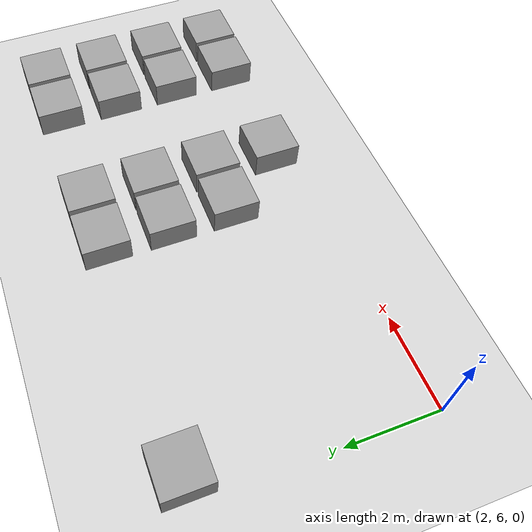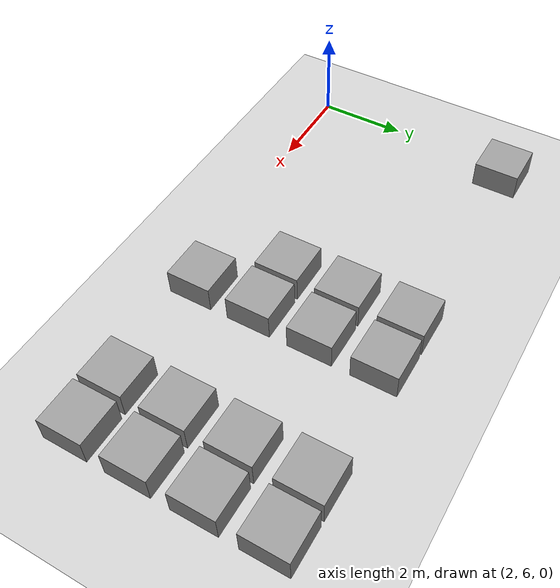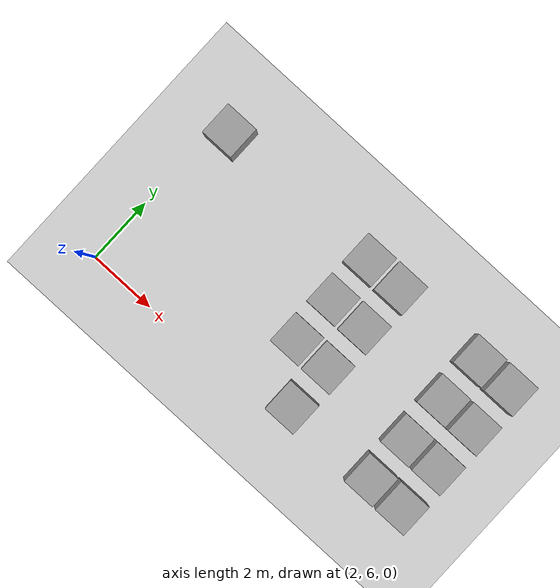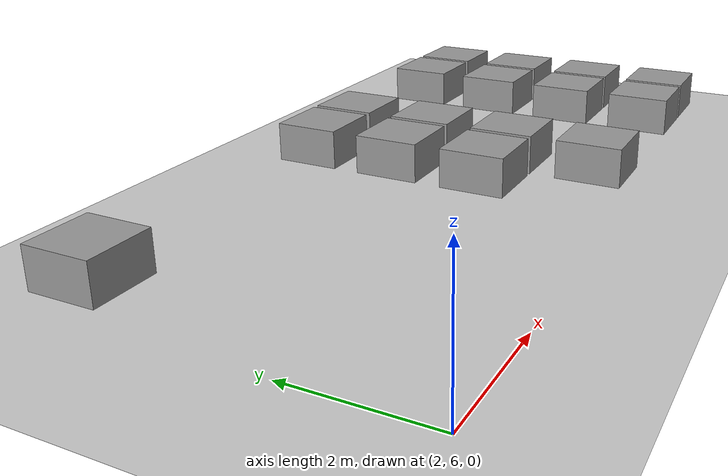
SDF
<sdf version="1.6">
 <world name="default">
  <model name="ground_plane">
   <static>1</static>
   <link name="link">
    <collision name="collision">
     <geometry><plane><normal>0 0 1</normal><size>100 100</size></plane></geometry>
     <surface>
      <contact><collide_bitmask>65535</collide_bitmask></contact>
      <friction><ode><mu>100</mu><mu2>50</mu2></ode></friction>
     </surface>
    </collision>
    <visual name="visual">
     <cast_shadows>0</cast_shadows>
     <geometry><plane><normal>0 0 1</normal><size>100 100</size></plane></geometry>
     <material>
      <script><uri>file://media/materials/scripts/gazebo.material</uri><name>Gazebo/Grey</name></script>
     </material>
    </visual>
   </link>
  </model>
  <model name="Estufa-objetos">
   <link name="link_0_clone_clone_20">
    <inertial>
     <mass>1</mass>
     <inertia>
      <ixx>0.166667</ixx>
      <ixy>0</ixy>
      <ixz>0</ixz>
      <iyy>0.166667</iyy>
      <iyz>0</iyz>
      <izz>0.166667</izz>
     </inertia>
    </inertial>
    <pose>2.5 5.9 0.5 0 -0 0</pose>
    <visual name="visual">
     <geometry><box><size>1 1 0.6</size></box></geometry>
     <material>
      <lighting>1</lighting>
      <script><uri>file://media/materials/scripts/gazebo.material</uri><name>Gazebo/Grey</name></script>
      <shader type="vertex"><normal_map>__default__</normal_map></shader>
      <ambient>0.3 0.3 0.3 1</ambient>
      <diffuse>0.7 0.7 0.7 1</diffuse>
      <specular>0.01 0.01 0.01 1</specular>
      <emissive>0 0 0 1</emissive>
     </material>
    </visual>
    <collision name="collision">
     <geometry><box><size>1 1 0.6</size></box></geometry>
     <surface>
      <friction>
       <ode><mu>1</mu><mu2>1</mu2><fdir1>0 0 0</fdir1><slip1>0</slip1><slip2>0</slip2></ode>
       <torsional>
        <coefficient>1</coefficient>
        <patch_radius>0</patch_radius>
        <surface_radius>0</surface_radius>
        <use_patch_radius>1</use_patch_radius>
        <ode><slip>0</slip></ode>
       </torsional>
      </friction>
      <bounce><restitution_coefficient>0</restitution_coefficient><threshold>1e+06</threshold></bounce>
      <contact>
       <collide_without_contact>0</collide_without_contact>
       <collide_without_contact_bitmask>1</collide_without_contact_bitmask>
       <collide_bitmask>1</collide_bitmask>
       <ode>
        <soft_cfm>0</soft_cfm>
        <soft_erp>0.2</soft_erp>
        <kp>1e+13</kp>
        <kd>1</kd>
        <max_vel>0.01</max_vel>
        <min_depth>0</min_depth>
       </ode>
       <bullet>
        <split_impulse>1</split_impulse>
        <split_impulse_penetration_threshold>-0.01</split_impulse_penetration_threshold>
        <soft_cfm>0</soft_cfm>
        <soft_erp>0.2</soft_erp>
        <kp>1e+13</kp>
        <kd>1</kd>
       </bullet>
      </contact>
     </surface>
    </collision>
   </link>
   <static>1</static>
   <pose>0.033468 4.9867 0 0 -0 0</pose>
  </model>
  <model name="Estufa-objetos_0">
   <link name="link_0_clone_clone_10">
    <inertial>
     <mass>1</mass>
     <inertia>
      <ixx>0.166667</ixx>
      <ixy>0</ixy>
      <ixz>0</ixz>
      <iyy>0.166667</iyy>
      <iyz>0</iyz>
      <izz>0.166667</izz>
     </inertia>
    </inertial>
    <pose>-1.4 1.7 0.5 0 -0 0</pose>
    <visual name="visual">
     <geometry><box><size>1 1 0.6</size></box></geometry>
     <material>
      <lighting>1</lighting>
      <script><uri>file://media/materials/scripts/gazebo.material</uri><name>Gazebo/Grey</name></script>
      <shader type="vertex"><normal_map>__default__</normal_map></shader>
      <ambient>0.3 0.3 0.3 1</ambient>
      <diffuse>0.7 0.7 0.7 1</diffuse>
      <specular>0.01 0.01 0.01 1</specular>
      <emissive>0 0 0 1</emissive>
     </material>
    </visual>
    <collision name="collision">
     <geometry><box><size>1 1 0.6</size></box></geometry>
     <surface>
      <friction>
       <ode><mu>1</mu><mu2>1</mu2><fdir1>0 0 0</fdir1><slip1>0</slip1><slip2>0</slip2></ode>
       <torsional>
        <coefficient>1</coefficient>
        <patch_radius>0</patch_radius>
        <surface_radius>0</surface_radius>
        <use_patch_radius>1</use_patch_radius>
        <ode><slip>0</slip></ode>
       </torsional>
      </friction>
      <bounce><restitution_coefficient>0</restitution_coefficient><threshold>1e+06</threshold></bounce>
      <contact>
       <collide_without_contact>0</collide_without_contact>
       <collide_without_contact_bitmask>1</collide_without_contact_bitmask>
       <collide_bitmask>1</collide_bitmask>
       <ode>
        <soft_cfm>0</soft_cfm>
        <soft_erp>0.2</soft_erp>
        <kp>1e+13</kp>
        <kd>1</kd>
        <max_vel>0.01</max_vel>
        <min_depth>0</min_depth>
       </ode>
       <bullet>
        <split_impulse>1</split_impulse>
        <split_impulse_penetration_threshold>-0.01</split_impulse_penetration_threshold>
        <soft_cfm>0</soft_cfm>
        <soft_erp>0.2</soft_erp>
        <kp>1e+13</kp>
        <kd>1</kd>
       </bullet>
      </contact>
     </surface>
    </collision>
   </link>
   <link name="link_0_clone_clone_12">
    <inertial>
     <mass>1</mass>
     <inertia>
      <ixx>0.166667</ixx>
      <ixy>0</ixy>
      <ixz>0</ixz>
      <iyy>0.166667</iyy>
      <iyz>0</iyz>
      <izz>0.166667</izz>
     </inertia>
    </inertial>
    <pose>2.5 3.1 0.5 0 -0 0</pose>
    <visual name="visual">
     <geometry><box><size>1 1 0.6</size></box></geometry>
     <material>
      <lighting>1</lighting>
      <script><uri>file://media/materials/scripts/gazebo.material</uri><name>Gazebo/Grey</name></script>
      <shader type="vertex"><normal_map>__default__</normal_map></shader>
      <ambient>0.3 0.3 0.3 1</ambient>
      <diffuse>0.7 0.7 0.7 1</diffuse>
      <specular>0.01 0.01 0.01 1</specular>
      <emissive>0 0 0 1</emissive>
     </material>
    </visual>
    <collision name="collision">
     <geometry><box><size>1 1 0.6</size></box></geometry>
     <surface>
      <friction>
       <ode><mu>1</mu><mu2>1</mu2><fdir1>0 0 0</fdir1><slip1>0</slip1><slip2>0</slip2></ode>
       <torsional>
        <coefficient>1</coefficient>
        <patch_radius>0</patch_radius>
        <surface_radius>0</surface_radius>
        <use_patch_radius>1</use_patch_radius>
        <ode><slip>0</slip></ode>
       </torsional>
      </friction>
      <bounce><restitution_coefficient>0</restitution_coefficient><threshold>1e+06</threshold></bounce>
      <contact>
       <collide_without_contact>0</collide_without_contact>
       <collide_without_contact_bitmask>1</collide_without_contact_bitmask>
       <collide_bitmask>1</collide_bitmask>
       <ode>
        <soft_cfm>0</soft_cfm>
        <soft_erp>0.2</soft_erp>
        <kp>1e+13</kp>
        <kd>1</kd>
        <max_vel>0.01</max_vel>
        <min_depth>0</min_depth>
       </ode>
       <bullet>
        <split_impulse>1</split_impulse>
        <split_impulse_penetration_threshold>-0.01</split_impulse_penetration_threshold>
        <soft_cfm>0</soft_cfm>
        <soft_erp>0.2</soft_erp>
        <kp>1e+13</kp>
        <kd>1</kd>
       </bullet>
      </contact>
     </surface>
    </collision>
   </link>
   <link name="link_0_clone_clone_13">
    <inertial>
     <mass>1</mass>
     <inertia>
      <ixx>0.166667</ixx>
      <ixy>0</ixy>
      <ixz>0</ixz>
      <iyy>0.166667</iyy>
      <iyz>0</iyz>
      <izz>0.166667</izz>
     </inertia>
    </inertial>
    <pose>1.4 3.1 0.5 0 -0 0</pose>
    <visual name="visual">
     <geometry><box><size>1 1 0.6</size></box></geometry>
     <material>
      <lighting>1</lighting>
      <script><uri>file://media/materials/scripts/gazebo.material</uri><name>Gazebo/Grey</name></script>
      <shader type="vertex"><normal_map>__default__</normal_map></shader>
      <ambient>0.3 0.3 0.3 1</ambient>
      <diffuse>0.7 0.7 0.7 1</diffuse>
      <specular>0.01 0.01 0.01 1</specular>
      <emissive>0 0 0 1</emissive>
     </material>
    </visual>
    <collision name="collision">
     <geometry><box><size>1 1 0.6</size></box></geometry>
     <surface>
      <friction>
       <ode><mu>1</mu><mu2>1</mu2><fdir1>0 0 0</fdir1><slip1>0</slip1><slip2>0</slip2></ode>
       <torsional>
        <coefficient>1</coefficient>
        <patch_radius>0</patch_radius>
        <surface_radius>0</surface_radius>
        <use_patch_radius>1</use_patch_radius>
        <ode><slip>0</slip></ode>
       </torsional>
      </friction>
      <bounce><restitution_coefficient>0</restitution_coefficient><threshold>1e+06</threshold></bounce>
      <contact>
       <collide_without_contact>0</collide_without_contact>
       <collide_without_contact_bitmask>1</collide_without_contact_bitmask>
       <collide_bitmask>1</collide_bitmask>
       <ode>
        <soft_cfm>0</soft_cfm>
        <soft_erp>0.2</soft_erp>
        <kp>1e+13</kp>
        <kd>1</kd>
        <max_vel>0.01</max_vel>
        <min_depth>0</min_depth>
       </ode>
       <bullet>
        <split_impulse>1</split_impulse>
        <split_impulse_penetration_threshold>-0.01</split_impulse_penetration_threshold>
        <soft_cfm>0</soft_cfm>
        <soft_erp>0.2</soft_erp>
        <kp>1e+13</kp>
        <kd>1</kd>
       </bullet>
      </contact>
     </surface>
    </collision>
   </link>
   <link name="link_0_clone_clone_14">
    <inertial>
     <mass>1</mass>
     <inertia>
      <ixx>0.166667</ixx>
      <ixy>0</ixy>
      <ixz>0</ixz>
      <iyy>0.166667</iyy>
      <iyz>0</iyz>
      <izz>0.166667</izz>
     </inertia>
    </inertial>
    <pose>-1.4 3.1 0.5 0 -0 0</pose>
    <visual name="visual">
     <geometry><box><size>1 1 0.6</size></box></geometry>
     <material>
      <lighting>1</lighting>
      <script><uri>file://media/materials/scripts/gazebo.material</uri><name>Gazebo/Grey</name></script>
      <shader type="vertex"><normal_map>__default__</normal_map></shader>
      <ambient>0.3 0.3 0.3 1</ambient>
      <diffuse>0.7 0.7 0.7 1</diffuse>
      <specular>0.01 0.01 0.01 1</specular>
      <emissive>0 0 0 1</emissive>
     </material>
    </visual>
    <collision name="collision">
     <geometry><box><size>1 1 0.6</size></box></geometry>
     <surface>
      <friction>
       <ode><mu>1</mu><mu2>1</mu2><fdir1>0 0 0</fdir1><slip1>0</slip1><slip2>0</slip2></ode>
       <torsional>
        <coefficient>1</coefficient>
        <patch_radius>0</patch_radius>
        <surface_radius>0</surface_radius>
        <use_patch_radius>1</use_patch_radius>
        <ode><slip>0</slip></ode>
       </torsional>
      </friction>
      <bounce><restitution_coefficient>0</restitution_coefficient><threshold>1e+06</threshold></bounce>
      <contact>
       <collide_without_contact>0</collide_without_contact>
       <collide_without_contact_bitmask>1</collide_without_contact_bitmask>
       <collide_bitmask>1</collide_bitmask>
       <ode>
        <soft_cfm>0</soft_cfm>
        <soft_erp>0.2</soft_erp>
        <kp>1e+13</kp>
        <kd>1</kd>
        <max_vel>0.01</max_vel>
        <min_depth>0</min_depth>
       </ode>
       <bullet>
        <split_impulse>1</split_impulse>
        <split_impulse_penetration_threshold>-0.01</split_impulse_penetration_threshold>
        <soft_cfm>0</soft_cfm>
        <soft_erp>0.2</soft_erp>
        <kp>1e+13</kp>
        <kd>1</kd>
       </bullet>
      </contact>
     </surface>
    </collision>
   </link>
   <link name="link_0_clone_clone_15">
    <inertial>
     <mass>1</mass>
     <inertia>
      <ixx>0.166667</ixx>
      <ixy>0</ixy>
      <ixz>0</ixz>
      <iyy>0.166667</iyy>
      <iyz>0</iyz>
      <izz>0.166667</izz>
     </inertia>
    </inertial>
    <pose>-2.5 3.1 0.5 0 -0 0</pose>
    <visual name="visual">
     <geometry><box><size>1 1 0.6</size></box></geometry>
     <material>
      <lighting>1</lighting>
      <script><uri>file://media/materials/scripts/gazebo.material</uri><name>Gazebo/Grey</name></script>
      <shader type="vertex"><normal_map>__default__</normal_map></shader>
      <ambient>0.3 0.3 0.3 1</ambient>
      <diffuse>0.7 0.7 0.7 1</diffuse>
      <specular>0.01 0.01 0.01 1</specular>
      <emissive>0 0 0 1</emissive>
     </material>
    </visual>
    <collision name="collision">
     <geometry><box><size>1 1 0.6</size></box></geometry>
     <surface>
      <friction>
       <ode><mu>1</mu><mu2>1</mu2><fdir1>0 0 0</fdir1><slip1>0</slip1><slip2>0</slip2></ode>
       <torsional>
        <coefficient>1</coefficient>
        <patch_radius>0</patch_radius>
        <surface_radius>0</surface_radius>
        <use_patch_radius>1</use_patch_radius>
        <ode><slip>0</slip></ode>
       </torsional>
      </friction>
      <bounce><restitution_coefficient>0</restitution_coefficient><threshold>1e+06</threshold></bounce>
      <contact>
       <collide_without_contact>0</collide_without_contact>
       <collide_without_contact_bitmask>1</collide_without_contact_bitmask>
       <collide_bitmask>1</collide_bitmask>
       <ode>
        <soft_cfm>0</soft_cfm>
        <soft_erp>0.2</soft_erp>
        <kp>1e+13</kp>
        <kd>1</kd>
        <max_vel>0.01</max_vel>
        <min_depth>0</min_depth>
       </ode>
       <bullet>
        <split_impulse>1</split_impulse>
        <split_impulse_penetration_threshold>-0.01</split_impulse_penetration_threshold>
        <soft_cfm>0</soft_cfm>
        <soft_erp>0.2</soft_erp>
        <kp>1e+13</kp>
        <kd>1</kd>
       </bullet>
      </contact>
     </surface>
    </collision>
   </link>
   <link name="link_0_clone_clone_16">
    <inertial>
     <mass>1</mass>
     <inertia>
      <ixx>0.166667</ixx>
      <ixy>0</ixy>
      <ixz>0</ixz>
      <iyy>0.166667</iyy>
      <iyz>0</iyz>
      <izz>0.166667</izz>
     </inertia>
    </inertial>
    <pose>2.5 4.5 0.5 0 -0 0</pose>
    <visual name="visual">
     <geometry><box><size>1 1 0.6</size></box></geometry>
     <material>
      <lighting>1</lighting>
      <script><uri>file://media/materials/scripts/gazebo.material</uri><name>Gazebo/Grey</name></script>
      <shader type="vertex"><normal_map>__default__</normal_map></shader>
      <ambient>0.3 0.3 0.3 1</ambient>
      <diffuse>0.7 0.7 0.7 1</diffuse>
      <specular>0.01 0.01 0.01 1</specular>
      <emissive>0 0 0 1</emissive>
     </material>
    </visual>
    <collision name="collision">
     <geometry><box><size>1 1 0.6</size></box></geometry>
     <surface>
      <friction>
       <ode><mu>1</mu><mu2>1</mu2><fdir1>0 0 0</fdir1><slip1>0</slip1><slip2>0</slip2></ode>
       <torsional>
        <coefficient>1</coefficient>
        <patch_radius>0</patch_radius>
        <surface_radius>0</surface_radius>
        <use_patch_radius>1</use_patch_radius>
        <ode><slip>0</slip></ode>
       </torsional>
      </friction>
      <bounce><restitution_coefficient>0</restitution_coefficient><threshold>1e+06</threshold></bounce>
      <contact>
       <collide_without_contact>0</collide_without_contact>
       <collide_without_contact_bitmask>1</collide_without_contact_bitmask>
       <collide_bitmask>1</collide_bitmask>
       <ode>
        <soft_cfm>0</soft_cfm>
        <soft_erp>0.2</soft_erp>
        <kp>1e+13</kp>
        <kd>1</kd>
        <max_vel>0.01</max_vel>
        <min_depth>0</min_depth>
       </ode>
       <bullet>
        <split_impulse>1</split_impulse>
        <split_impulse_penetration_threshold>-0.01</split_impulse_penetration_threshold>
        <soft_cfm>0</soft_cfm>
        <soft_erp>0.2</soft_erp>
        <kp>1e+13</kp>
        <kd>1</kd>
       </bullet>
      </contact>
     </surface>
    </collision>
   </link>
   <link name="link_0_clone_clone_17">
    <inertial>
     <mass>1</mass>
     <inertia>
      <ixx>0.166667</ixx>
      <ixy>0</ixy>
      <ixz>0</ixz>
      <iyy>0.166667</iyy>
      <iyz>0</iyz>
      <izz>0.166667</izz>
     </inertia>
    </inertial>
    <pose>1.4 4.5 0.5 0 -0 0</pose>
    <visual name="visual">
     <geometry><box><size>1 1 0.6</size></box></geometry>
     <material>
      <lighting>1</lighting>
      <script><uri>file://media/materials/scripts/gazebo.material</uri><name>Gazebo/Grey</name></script>
      <shader type="vertex"><normal_map>__default__</normal_map></shader>
      <ambient>0.3 0.3 0.3 1</ambient>
      <diffuse>0.7 0.7 0.7 1</diffuse>
      <specular>0.01 0.01 0.01 1</specular>
      <emissive>0 0 0 1</emissive>
     </material>
    </visual>
    <collision name="collision">
     <geometry><box><size>1 1 0.6</size></box></geometry>
     <surface>
      <friction>
       <ode><mu>1</mu><mu2>1</mu2><fdir1>0 0 0</fdir1><slip1>0</slip1><slip2>0</slip2></ode>
       <torsional>
        <coefficient>1</coefficient>
        <patch_radius>0</patch_radius>
        <surface_radius>0</surface_radius>
        <use_patch_radius>1</use_patch_radius>
        <ode><slip>0</slip></ode>
       </torsional>
      </friction>
      <bounce><restitution_coefficient>0</restitution_coefficient><threshold>1e+06</threshold></bounce>
      <contact>
       <collide_without_contact>0</collide_without_contact>
       <collide_without_contact_bitmask>1</collide_without_contact_bitmask>
       <collide_bitmask>1</collide_bitmask>
       <ode>
        <soft_cfm>0</soft_cfm>
        <soft_erp>0.2</soft_erp>
        <kp>1e+13</kp>
        <kd>1</kd>
        <max_vel>0.01</max_vel>
        <min_depth>0</min_depth>
       </ode>
       <bullet>
        <split_impulse>1</split_impulse>
        <split_impulse_penetration_threshold>-0.01</split_impulse_penetration_threshold>
        <soft_cfm>0</soft_cfm>
        <soft_erp>0.2</soft_erp>
        <kp>1e+13</kp>
        <kd>1</kd>
       </bullet>
      </contact>
     </surface>
    </collision>
   </link>
   <link name="link_0_clone_clone_18">
    <inertial>
     <mass>1</mass>
     <inertia>
      <ixx>0.166667</ixx>
      <ixy>0</ixy>
      <ixz>0</ixz>
      <iyy>0.166667</iyy>
      <iyz>0</iyz>
      <izz>0.166667</izz>
     </inertia>
    </inertial>
    <pose>-1.4 4.5 0.5 0 -0 0</pose>
    <visual name="visual">
     <geometry><box><size>1 1 0.6</size></box></geometry>
     <material>
      <lighting>1</lighting>
      <script><uri>file://media/materials/scripts/gazebo.material</uri><name>Gazebo/Grey</name></script>
      <shader type="vertex"><normal_map>__default__</normal_map></shader>
      <ambient>0.3 0.3 0.3 1</ambient>
      <diffuse>0.7 0.7 0.7 1</diffuse>
      <specular>0.01 0.01 0.01 1</specular>
      <emissive>0 0 0 1</emissive>
     </material>
    </visual>
    <collision name="collision">
     <geometry><box><size>1 1 0.6</size></box></geometry>
     <surface>
      <friction>
       <ode><mu>1</mu><mu2>1</mu2><fdir1>0 0 0</fdir1><slip1>0</slip1><slip2>0</slip2></ode>
       <torsional>
        <coefficient>1</coefficient>
        <patch_radius>0</patch_radius>
        <surface_radius>0</surface_radius>
        <use_patch_radius>1</use_patch_radius>
        <ode><slip>0</slip></ode>
       </torsional>
      </friction>
      <bounce><restitution_coefficient>0</restitution_coefficient><threshold>1e+06</threshold></bounce>
      <contact>
       <collide_without_contact>0</collide_without_contact>
       <collide_without_contact_bitmask>1</collide_without_contact_bitmask>
       <collide_bitmask>1</collide_bitmask>
       <ode>
        <soft_cfm>0</soft_cfm>
        <soft_erp>0.2</soft_erp>
        <kp>1e+13</kp>
        <kd>1</kd>
        <max_vel>0.01</max_vel>
        <min_depth>0</min_depth>
       </ode>
       <bullet>
        <split_impulse>1</split_impulse>
        <split_impulse_penetration_threshold>-0.01</split_impulse_penetration_threshold>
        <soft_cfm>0</soft_cfm>
        <soft_erp>0.2</soft_erp>
        <kp>1e+13</kp>
        <kd>1</kd>
       </bullet>
      </contact>
     </surface>
    </collision>
   </link>
   <link name="link_0_clone_clone_19">
    <inertial>
     <mass>1</mass>
     <inertia>
      <ixx>0.166667</ixx>
      <ixy>0</ixy>
      <ixz>0</ixz>
      <iyy>0.166667</iyy>
      <iyz>0</iyz>
      <izz>0.166667</izz>
     </inertia>
    </inertial>
    <pose>-2.5 4.5 0.5 0 -0 0</pose>
    <visual name="visual">
     <geometry><box><size>1 1 0.6</size></box></geometry>
     <material>
      <lighting>1</lighting>
      <script><uri>file://media/materials/scripts/gazebo.material</uri><name>Gazebo/Grey</name></script>
      <shader type="vertex"><normal_map>__default__</normal_map></shader>
      <ambient>0.3 0.3 0.3 1</ambient>
      <diffuse>0.7 0.7 0.7 1</diffuse>
      <specular>0.01 0.01 0.01 1</specular>
      <emissive>0 0 0 1</emissive>
     </material>
    </visual>
    <collision name="collision">
     <geometry><box><size>1 1 0.6</size></box></geometry>
     <surface>
      <friction>
       <ode><mu>1</mu><mu2>1</mu2><fdir1>0 0 0</fdir1><slip1>0</slip1><slip2>0</slip2></ode>
       <torsional>
        <coefficient>1</coefficient>
        <patch_radius>0</patch_radius>
        <surface_radius>0</surface_radius>
        <use_patch_radius>1</use_patch_radius>
        <ode><slip>0</slip></ode>
       </torsional>
      </friction>
      <bounce><restitution_coefficient>0</restitution_coefficient><threshold>1e+06</threshold></bounce>
      <contact>
       <collide_without_contact>0</collide_without_contact>
       <collide_without_contact_bitmask>1</collide_without_contact_bitmask>
       <collide_bitmask>1</collide_bitmask>
       <ode>
        <soft_cfm>0</soft_cfm>
        <soft_erp>0.2</soft_erp>
        <kp>1e+13</kp>
        <kd>1</kd>
        <max_vel>0.01</max_vel>
        <min_depth>0</min_depth>
       </ode>
       <bullet>
        <split_impulse>1</split_impulse>
        <split_impulse_penetration_threshold>-0.01</split_impulse_penetration_threshold>
        <soft_cfm>0</soft_cfm>
        <soft_erp>0.2</soft_erp>
        <kp>1e+13</kp>
        <kd>1</kd>
       </bullet>
      </contact>
     </surface>
    </collision>
   </link>
   <link name="link_0_clone_clone_20">
    <inertial>
     <mass>1</mass>
     <inertia>
      <ixx>0.166667</ixx>
      <ixy>0</ixy>
      <ixz>0</ixz>
      <iyy>0.166667</iyy>
      <iyz>0</iyz>
      <izz>0.166667</izz>
     </inertia>
    </inertial>
    <pose>2.5 5.9 0.5 0 -0 0</pose>
    <visual name="visual">
     <geometry><box><size>1 1 0.6</size></box></geometry>
     <material>
      <lighting>1</lighting>
      <script><uri>file://media/materials/scripts/gazebo.material</uri><name>Gazebo/Grey</name></script>
      <shader type="vertex"><normal_map>__default__</normal_map></shader>
      <ambient>0.3 0.3 0.3 1</ambient>
      <diffuse>0.7 0.7 0.7 1</diffuse>
      <specular>0.01 0.01 0.01 1</specular>
      <emissive>0 0 0 1</emissive>
     </material>
    </visual>
    <collision name="collision">
     <geometry><box><size>1 1 0.6</size></box></geometry>
     <surface>
      <friction>
       <ode><mu>1</mu><mu2>1</mu2><fdir1>0 0 0</fdir1><slip1>0</slip1><slip2>0</slip2></ode>
       <torsional>
        <coefficient>1</coefficient>
        <patch_radius>0</patch_radius>
        <surface_radius>0</surface_radius>
        <use_patch_radius>1</use_patch_radius>
        <ode><slip>0</slip></ode>
       </torsional>
      </friction>
      <bounce><restitution_coefficient>0</restitution_coefficient><threshold>1e+06</threshold></bounce>
      <contact>
       <collide_without_contact>0</collide_without_contact>
       <collide_without_contact_bitmask>1</collide_without_contact_bitmask>
       <collide_bitmask>1</collide_bitmask>
       <ode>
        <soft_cfm>0</soft_cfm>
        <soft_erp>0.2</soft_erp>
        <kp>1e+13</kp>
        <kd>1</kd>
        <max_vel>0.01</max_vel>
        <min_depth>0</min_depth>
       </ode>
       <bullet>
        <split_impulse>1</split_impulse>
        <split_impulse_penetration_threshold>-0.01</split_impulse_penetration_threshold>
        <soft_cfm>0</soft_cfm>
        <soft_erp>0.2</soft_erp>
        <kp>1e+13</kp>
        <kd>1</kd>
       </bullet>
      </contact>
     </surface>
    </collision>
   </link>
   <link name="link_0_clone_clone_21">
    <inertial>
     <mass>1</mass>
     <inertia>
      <ixx>0.166667</ixx>
      <ixy>0</ixy>
      <ixz>0</ixz>
      <iyy>0.166667</iyy>
      <iyz>0</iyz>
      <izz>0.166667</izz>
     </inertia>
    </inertial>
    <pose>1.4 5.9 0.5 0 -0 0</pose>
    <visual name="visual">
     <geometry><box><size>1 1 0.6</size></box></geometry>
     <material>
      <lighting>1</lighting>
      <script><uri>file://media/materials/scripts/gazebo.material</uri><name>Gazebo/Grey</name></script>
      <shader type="vertex"><normal_map>__default__</normal_map></shader>
      <ambient>0.3 0.3 0.3 1</ambient>
      <diffuse>0.7 0.7 0.7 1</diffuse>
      <specular>0.01 0.01 0.01 1</specular>
      <emissive>0 0 0 1</emissive>
     </material>
    </visual>
    <collision name="collision">
     <geometry><box><size>1 1 0.6</size></box></geometry>
     <surface>
      <friction>
       <ode><mu>1</mu><mu2>1</mu2><fdir1>0 0 0</fdir1><slip1>0</slip1><slip2>0</slip2></ode>
       <torsional>
        <coefficient>1</coefficient>
        <patch_radius>0</patch_radius>
        <surface_radius>0</surface_radius>
        <use_patch_radius>1</use_patch_radius>
        <ode><slip>0</slip></ode>
       </torsional>
      </friction>
      <bounce><restitution_coefficient>0</restitution_coefficient><threshold>1e+06</threshold></bounce>
      <contact>
       <collide_without_contact>0</collide_without_contact>
       <collide_without_contact_bitmask>1</collide_without_contact_bitmask>
       <collide_bitmask>1</collide_bitmask>
       <ode>
        <soft_cfm>0</soft_cfm>
        <soft_erp>0.2</soft_erp>
        <kp>1e+13</kp>
        <kd>1</kd>
        <max_vel>0.01</max_vel>
        <min_depth>0</min_depth>
       </ode>
       <bullet>
        <split_impulse>1</split_impulse>
        <split_impulse_penetration_threshold>-0.01</split_impulse_penetration_threshold>
        <soft_cfm>0</soft_cfm>
        <soft_erp>0.2</soft_erp>
        <kp>1e+13</kp>
        <kd>1</kd>
       </bullet>
      </contact>
     </surface>
    </collision>
   </link>
   <link name="link_0_clone_clone_22">
    <inertial>
     <mass>1</mass>
     <inertia>
      <ixx>0.166667</ixx>
      <ixy>0</ixy>
      <ixz>0</ixz>
      <iyy>0.166667</iyy>
      <iyz>0</iyz>
      <izz>0.166667</izz>
     </inertia>
    </inertial>
    <pose>-1.4 5.9 0.5 0 -0 0</pose>
    <visual name="visual">
     <geometry><box><size>1 1 0.6</size></box></geometry>
     <material>
      <lighting>1</lighting>
      <script><uri>file://media/materials/scripts/gazebo.material</uri><name>Gazebo/Grey</name></script>
      <shader type="vertex"><normal_map>__default__</normal_map></shader>
      <ambient>0.3 0.3 0.3 1</ambient>
      <diffuse>0.7 0.7 0.7 1</diffuse>
      <specular>0.01 0.01 0.01 1</specular>
      <emissive>0 0 0 1</emissive>
     </material>
    </visual>
    <collision name="collision">
     <geometry><box><size>1 1 0.6</size></box></geometry>
     <surface>
      <friction>
       <ode><mu>1</mu><mu2>1</mu2><fdir1>0 0 0</fdir1><slip1>0</slip1><slip2>0</slip2></ode>
       <torsional>
        <coefficient>1</coefficient>
        <patch_radius>0</patch_radius>
        <surface_radius>0</surface_radius>
        <use_patch_radius>1</use_patch_radius>
        <ode><slip>0</slip></ode>
       </torsional>
      </friction>
      <bounce><restitution_coefficient>0</restitution_coefficient><threshold>1e+06</threshold></bounce>
      <contact>
       <collide_without_contact>0</collide_without_contact>
       <collide_without_contact_bitmask>1</collide_without_contact_bitmask>
       <collide_bitmask>1</collide_bitmask>
       <ode>
        <soft_cfm>0</soft_cfm>
        <soft_erp>0.2</soft_erp>
        <kp>1e+13</kp>
        <kd>1</kd>
        <max_vel>0.01</max_vel>
        <min_depth>0</min_depth>
       </ode>
       <bullet>
        <split_impulse>1</split_impulse>
        <split_impulse_penetration_threshold>-0.01</split_impulse_penetration_threshold>
        <soft_cfm>0</soft_cfm>
        <soft_erp>0.2</soft_erp>
        <kp>1e+13</kp>
        <kd>1</kd>
       </bullet>
      </contact>
     </surface>
    </collision>
   </link>
   <link name="link_0_clone_clone_23">
    <inertial>
     <mass>1</mass>
     <inertia>
      <ixx>0.166667</ixx>
      <ixy>0</ixy>
      <ixz>0</ixz>
      <iyy>0.166667</iyy>
      <iyz>0</iyz>
      <izz>0.166667</izz>
     </inertia>
    </inertial>
    <pose>-2.5 5.9 0.5 0 -0 0</pose>
    <visual name="visual">
     <geometry><box><size>1 1 0.6</size></box></geometry>
     <material>
      <lighting>1</lighting>
      <script><uri>file://media/materials/scripts/gazebo.material</uri><name>Gazebo/Grey</name></script>
      <shader type="vertex"><normal_map>__default__</normal_map></shader>
      <ambient>0.3 0.3 0.3 1</ambient>
      <diffuse>0.7 0.7 0.7 1</diffuse>
      <specular>0.01 0.01 0.01 1</specular>
      <emissive>0 0 0 1</emissive>
     </material>
    </visual>
    <collision name="collision">
     <geometry><box><size>1 1 0.6</size></box></geometry>
     <surface>
      <friction>
       <ode><mu>1</mu><mu2>1</mu2><fdir1>0 0 0</fdir1><slip1>0</slip1><slip2>0</slip2></ode>
       <torsional>
        <coefficient>1</coefficient>
        <patch_radius>0</patch_radius>
        <surface_radius>0</surface_radius>
        <use_patch_radius>1</use_patch_radius>
        <ode><slip>0</slip></ode>
       </torsional>
      </friction>
      <bounce><restitution_coefficient>0</restitution_coefficient><threshold>1e+06</threshold></bounce>
      <contact>
       <collide_without_contact>0</collide_without_contact>
       <collide_without_contact_bitmask>1</collide_without_contact_bitmask>
       <collide_bitmask>1</collide_bitmask>
       <ode>
        <soft_cfm>0</soft_cfm>
        <soft_erp>0.2</soft_erp>
        <kp>1e+13</kp>
        <kd>1</kd>
        <max_vel>0.01</max_vel>
        <min_depth>0</min_depth>
       </ode>
       <bullet>
        <split_impulse>1</split_impulse>
        <split_impulse_penetration_threshold>-0.01</split_impulse_penetration_threshold>
        <soft_cfm>0</soft_cfm>
        <soft_erp>0.2</soft_erp>
        <kp>1e+13</kp>
        <kd>1</kd>
       </bullet>
      </contact>
     </surface>
    </collision>
   </link>
   <link name="link_0_clone_clone_8">
    <inertial>
     <mass>1</mass>
     <inertia>
      <ixx>0.166667</ixx>
      <ixy>0</ixy>
      <ixz>0</ixz>
      <iyy>0.166667</iyy>
      <iyz>0</iyz>
      <izz>0.166667</izz>
     </inertia>
    </inertial>
    <pose>2.5 1.7 0.5 0 -0 0</pose>
    <visual name="visual">
     <geometry><box><size>1 1 0.6</size></box></geometry>
     <material>
      <lighting>1</lighting>
      <script><uri>file://media/materials/scripts/gazebo.material</uri><name>Gazebo/Grey</name></script>
      <shader type="vertex"><normal_map>__default__</normal_map></shader>
      <ambient>0.3 0.3 0.3 1</ambient>
      <diffuse>0.7 0.7 0.7 1</diffuse>
      <specular>0.01 0.01 0.01 1</specular>
      <emissive>0 0 0 1</emissive>
     </material>
    </visual>
    <collision name="collision">
     <geometry><box><size>1 1 0.6</size></box></geometry>
     <surface>
      <friction>
       <ode><mu>1</mu><mu2>1</mu2><fdir1>0 0 0</fdir1><slip1>0</slip1><slip2>0</slip2></ode>
       <torsional>
        <coefficient>1</coefficient>
        <patch_radius>0</patch_radius>
        <surface_radius>0</surface_radius>
        <use_patch_radius>1</use_patch_radius>
        <ode><slip>0</slip></ode>
       </torsional>
      </friction>
      <bounce><restitution_coefficient>0</restitution_coefficient><threshold>1e+06</threshold></bounce>
      <contact>
       <collide_without_contact>0</collide_without_contact>
       <collide_without_contact_bitmask>1</collide_without_contact_bitmask>
       <collide_bitmask>1</collide_bitmask>
       <ode>
        <soft_cfm>0</soft_cfm>
        <soft_erp>0.2</soft_erp>
        <kp>1e+13</kp>
        <kd>1</kd>
        <max_vel>0.01</max_vel>
        <min_depth>0</min_depth>
       </ode>
       <bullet>
        <split_impulse>1</split_impulse>
        <split_impulse_penetration_threshold>-0.01</split_impulse_penetration_threshold>
        <soft_cfm>0</soft_cfm>
        <soft_erp>0.2</soft_erp>
        <kp>1e+13</kp>
        <kd>1</kd>
       </bullet>
      </contact>
     </surface>
    </collision>
   </link>
   <link name="link_0_clone_clone_9">
    <inertial>
     <mass>1</mass>
     <inertia>
      <ixx>0.166667</ixx>
      <ixy>0</ixy>
      <ixz>0</ixz>
      <iyy>0.166667</iyy>
      <iyz>0</iyz>
      <izz>0.166667</izz>
     </inertia>
    </inertial>
    <pose>1.4 1.7 0.5 0 -0 0</pose>
    <visual name="visual">
     <geometry><box><size>1 1 0.6</size></box></geometry>
     <material>
      <lighting>1</lighting>
      <script><uri>file://media/materials/scripts/gazebo.material</uri><name>Gazebo/Grey</name></script>
      <shader type="vertex"><normal_map>__default__</normal_map></shader>
      <ambient>0.3 0.3 0.3 1</ambient>
      <diffuse>0.7 0.7 0.7 1</diffuse>
      <specular>0.01 0.01 0.01 1</specular>
      <emissive>0 0 0 1</emissive>
     </material>
    </visual>
    <collision name="collision">
     <geometry><box><size>1 1 0.6</size></box></geometry>
     <surface>
      <friction>
       <ode><mu>1</mu><mu2>1</mu2><fdir1>0 0 0</fdir1><slip1>0</slip1><slip2>0</slip2></ode>
       <torsional>
        <coefficient>1</coefficient>
        <patch_radius>0</patch_radius>
        <surface_radius>0</surface_radius>
        <use_patch_radius>1</use_patch_radius>
        <ode><slip>0</slip></ode>
       </torsional>
      </friction>
      <bounce><restitution_coefficient>0</restitution_coefficient><threshold>1e+06</threshold></bounce>
      <contact>
       <collide_without_contact>0</collide_without_contact>
       <collide_without_contact_bitmask>1</collide_without_contact_bitmask>
       <collide_bitmask>1</collide_bitmask>
       <ode>
        <soft_cfm>0</soft_cfm>
        <soft_erp>0.2</soft_erp>
        <kp>1e+13</kp>
        <kd>1</kd>
        <max_vel>0.01</max_vel>
        <min_depth>0</min_depth>
       </ode>
       <bullet>
        <split_impulse>1</split_impulse>
        <split_impulse_penetration_threshold>-0.01</split_impulse_penetration_threshold>
        <soft_cfm>0</soft_cfm>
        <soft_erp>0.2</soft_erp>
        <kp>1e+13</kp>
        <kd>1</kd>
       </bullet>
      </contact>
     </surface>
    </collision>
   </link>
   <static>1</static>
   <pose>10.0022 4.97644 0 0 -0 0</pose>
  </model>
 </world>
</sdf>
